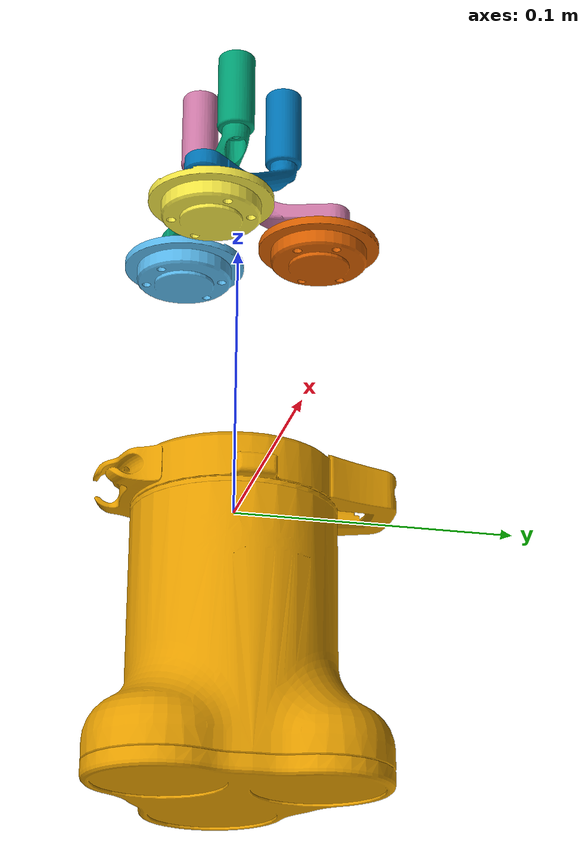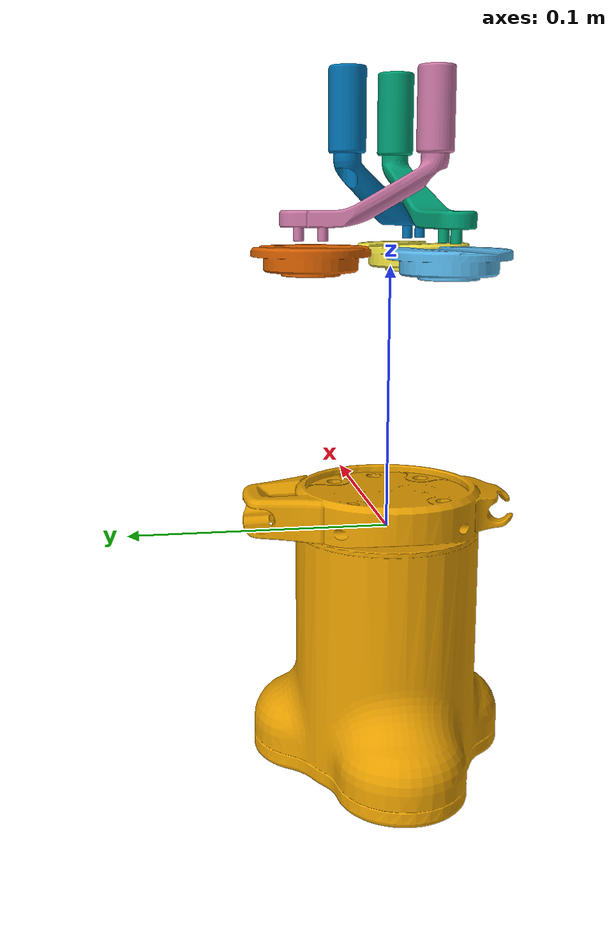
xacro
<?xml version="1.0" encoding="utf-8"?>

<robot name="onrobot_3fg15" xmlns:xacro="http://www.ros.org/wiki/xacro">

  <!-- ================= Xacro arguments ================= -->

  <xacro:arg name="mesh_path" default="package://onrobot_3fg15/meshes"/>
  <xacro:arg name="host" default="127.0.0.1"/>
  <xacro:arg name="port" default="502"/>

  <!-- silicone, aluminum or knurled -->
  <xacro:arg name="fingertip_material" default="13_silicone"/>

  <!-- 1 = 9 mm backward, 2 = default position, 3 = 9 mm foward -->
  <xacro:arg name="fingertip_position" default="2"/>

  <!-- Joint properties -->
  <xacro:arg name="finger_effort" default="6.23"/>
  <xacro:arg name="finger_velocity" default="1.4"/>

  <!-- ================= Fingertip material and collision properties ================= -->

  <xacro:if value="${'$(arg fingertip_material)' == '13_silicone'}">
    <xacro:property
      name="fingertip_mesh"
      value="Ø13_silicone_fingertip_link"/>
    <xacro:property
      name="fingertip_mu"
      value="0.4"/>
  </xacro:if>

  <xacro:if value="${'$(arg fingertip_material)' == '165_silicone'}">
    <xacro:property
      name="fingertip_mesh"
      value="Ø165_silicone_fingertip_link"/>
    <xacro:property
      name="fingertip_mu"
      value="0.4"/>
  </xacro:if>

  <xacro:if value="${'$(arg fingertip_material)' == '13_steel'}">
    <xacro:property
      name="fingertip_mesh"
      value="Ø13_steel_fingertip_link"/>
    <xacro:property
      name="fingertip_mu"
      value="0.15"/>
  </xacro:if>

  <xacro:if value="${'$(arg fingertip_material)' == '10_steel'}">
    <xacro:property
      name="fingertip_mesh"
      value="Ø10_steel_fingertip_link"/>
    <xacro:property
      name="fingertip_mu"
      value="0.15"/>
  </xacro:if>

  <xacro:if value="${'$(arg fingertip_material)' == 'knurled'}">
    <xacro:property
      name="fingertip_mesh"
      value="Ø13_steel_fingertip_link"/>
    <xacro:property
      name="fingertip_mu"
      value="0.6"/>
  </xacro:if>

  <!-- ================= Fingertip mounting position ================= -->

  <!-- Position 1: 9 mm backwards, joint range -2 degrees to 150 degrees -->
  <xacro:if value="${'$(arg fingertip_position)' == '1'}">
    <xacro:property
      name="fingertip_x_offset"
      value="-0.009"/>
    <xacro:property
      name="finger_lower_limit"
      value="-0.03490658503988659"/>
    <xacro:property
      name="finger_upper_limit"
      value="2.79253"/>
  </xacro:if>

  <!-- Position 2: current position and current joint range -->
  <xacro:if value="${'$(arg fingertip_position)' == '2'}">
    <xacro:property
      name="fingertip_x_offset"
      value="0"/>
    <xacro:property
      name="finger_lower_limit"
      value="0"/>
    <xacro:property
      name="finger_upper_limit"
      value="2.79253"/>
  </xacro:if>

  <!-- Position 3: 9 mm forwards, joint range 2 degrees to 150 degrees -->
  <xacro:if value="${'$(arg fingertip_position)' == '3'}">
    <xacro:property
      name="fingertip_x_offset"
      value="0.009"/>
    <xacro:property
      name="finger_lower_limit"
      value="0.03490658503988659"/>
    <xacro:property
      name="finger_upper_limit"
      value="2.79253"/>
  </xacro:if>

  <!-- ================= Shared finger base macro ================= -->

  <xacro:macro name="finger_base" params="side">

    <link name="${side}_finger_base_link">

      <inertial>
        <origin
          xyz="1.9356E-09 -3.2268E-07 0.0036526"
          rpy="0 0 0"/>
        <mass value="0.073984"/>
        <inertia
          ixx="7.7599E-06"
          ixy="1.0265E-11"
          ixz="1.4086E-14"
          iyy="7.4402E-06"
          iyz="-1.0881E-15"
          izz="1.4085E-05"/>
      </inertial>

      <visual>
        <origin
          xyz="0 0 0.008"
          rpy="0 0 ${pi}"/>
        <geometry>
          <mesh filename="$(arg mesh_path)/finger_base_link.dae"/>
        </geometry>
      </visual>

    <collision>
      <origin
        xyz="0 0 0"
        rpy="0 0 0" />
      <geometry>
        <mesh filename="$(arg mesh_path)/finger_base_link.STL"/>
      </geometry>
    </collision>

    </link>

  </xacro:macro>

  <!-- ================= Shared fingertip macro ================= -->

  <xacro:macro name="fingertip" params="side">

    <link name="${side}_fingertip_link">

      <inertial>
        <origin
        xyz="0.0291 -1.5409E-06 -0.021298"
        rpy="0 0 0" />
      <mass
        value="0.055374" />
      <inertia
        ixx="3.6915E-06"
        ixy="-1.5645E-09"
        ixz="3.409E-06"
        iyy="1.1731E-05"
        iyz="5.0834E-10"
        izz="9.2854E-06" />
      </inertial>

      <visual>
        <origin
          xyz="0 0 0"
          rpy="0 0 0"/>
        <geometry>
          <mesh filename="$(arg mesh_path)/${fingertip_mesh}.dae"/>
        </geometry>
      </visual>

    <collision>
      <origin
        xyz="0 0 0"
        rpy="0 0 0" />
      <geometry>
          <mesh filename="$(arg mesh_path)/${fingertip_mesh}.STL"/>
      </geometry>
    </collision>

    </link>

    <joint name="${side}_finger_tip_joint" type="fixed">
      <origin
        xyz="${fingertip_x_offset} 0 0"
        rpy="0 0 0"/>
      <parent link="${side}_finger_base_link"/>
      <child link="${side}_fingertip_link"/>
    </joint>

    <gazebo reference="${side}_fingertip_link">
      <mu1>${fingertip_mu}</mu1>
      <mu2>${fingertip_mu}</mu2>
    </gazebo>

  </xacro:macro>

  <!-- ================= Base link ================= -->

  <link name="base_link">

    <inertial>
      <origin
        xyz="-0.00035875 -0.0001775 0.07158"
        rpy="0 0 0"/>
      <mass value="0.68599"/>
      <inertia
        ixx="0.00073145"
        ixy="-2.0611E-08"
        ixz="3.58E-07"
        iyy="0.000737"
        iyz="-2.2044E-07"
        izz="0.00076009"/>
    </inertial>

    <visual>
      <origin
        xyz="0 0 0.0138"
        rpy="${pi} 0 -${pi / 2}"/>
      <geometry>
        <mesh filename="$(arg mesh_path)/base_link.dae"/>
      </geometry>
    </visual>

    <collision>
      <origin
        xyz="0 0 0"
        rpy="0 0 0" />
      <geometry>
        <mesh filename="$(arg mesh_path)/base_link.STL"/>
      </geometry>
    </collision>

  </link>

  <!-- ================= Left finger base ================= -->

  <xacro:finger_base side="left"/>

  <joint name="finger_angle" type="revolute">

    <origin
      xyz="-0.025981 -0.015 0.1143"
      rpy="3.1416 0 0.22689"/>
    <parent link="base_link"/>
    <child link="left_finger_base_link"/>
    <axis xyz="0 0 1"/>
    <limit
      lower="${finger_lower_limit}"
      upper="${finger_upper_limit}"
      effort="$(arg finger_effort)"
      velocity="$(arg finger_velocity)"/>

  </joint>

  <!-- ================= Left fingertip ================= -->

  <xacro:fingertip side="left"/>

  <!-- ================= Right finger base ================= -->

  <xacro:finger_base side="right"/>

  <joint name="right_finger_base_joint" type="revolute">

    <origin
      xyz="0.025981 -0.015 0.1143"
      rpy="3.1416 0 2.3213"/>
    <parent link="base_link"/>
    <child link="right_finger_base_link"/>
    <axis xyz="0 0 1"/>
    <limit
      lower="${finger_lower_limit}"
      upper="${finger_upper_limit}"
      effort="$(arg finger_effort)"
      velocity="$(arg finger_velocity)"/>
    <mimic
      joint="finger_angle"
      multiplier="1"
      offset="0"/>

  </joint>

  <!-- ================= Right fingertip ================= -->

  <xacro:fingertip side="right"/>

  <!-- ================= Middle finger base ================= -->

  <xacro:finger_base side="middle"/>

  <joint name="middle_finger_base_joint" type="revolute">
    <origin
      xyz="0 0.03 0.1143"
      rpy="3.1416 0 -1.8675"/>
    <parent link="base_link"/>
    <child link="middle_finger_base_link"/>
    <axis xyz="0 0 1"/>
    <limit
      lower="${finger_lower_limit}"
      upper="${finger_upper_limit}"
      effort="$(arg finger_effort)"
      velocity="$(arg finger_velocity)"/>
    <mimic
      joint="finger_angle"
      multiplier="1"
      offset="0"/>

  </joint>

  <!-- ================= Middle fingertip ================= -->

  <xacro:fingertip side="middle"/>

  <!-- Native external diameter is commanded independently from the measured
       mechanism angle used to animate the three coupled fingers. -->
  <link name="grip_diameter_control_link"/>
  <joint name="grip_diameter" type="prismatic">
    <parent link="base_link"/>
    <child link="grip_diameter_control_link"/>
    <axis xyz="1 0 0"/>
    <limit lower="0" upper="0.180" effort="100" velocity="1"/>
  </joint>

  <ros2_control name="OnRobot3FG15System" type="system">
    <hardware>
      <plugin>onrobot_gripper_hardware/OnRobotThreeFingerSystem</plugin>
      <param name="model">3fg15</param>
      <param name="transport">tcp</param>
      <param name="host">$(arg host)</param>
      <param name="port">$(arg port)</param>
      <param name="slave_id">65</param>
      <param name="default_force_percent">20.0</param>
      <!-- Device mechanism angle increases while this visual joint closes. -->
      <param name="urdf_finger_angle_scale">-1.0</param>
      <param name="urdf_finger_angle_offset">${finger_upper_limit}</param>
      <param name="urdf_finger_angle_minimum">${finger_lower_limit}</param>
      <param name="urdf_finger_angle_maximum">${finger_upper_limit}</param>
      <param name="fingertip_position">$(arg fingertip_position)</param>
      <param name="poll_period_ms">20</param>
    </hardware>
    <joint name="grip_diameter">
      <command_interface name="position"/>
      <command_interface name="effort"/>
      <state_interface name="position"/>
      <state_interface name="velocity"/>
      <state_interface name="minimum_external_diameter"/>
      <state_interface name="maximum_external_diameter"/>
      <state_interface name="task_position_valid"/>
      <state_interface name="force_valid"/>
      <state_interface name="busy"/>
      <state_interface name="grip_detected"/>
      <state_interface name="active_mode"/>
      <state_interface name="connection_state"/>
      <state_interface name="faulted"/>
      <state_interface name="fault_code"/>
      <state_interface name="firmware_qualification"/>
      <state_interface name="sample_sequence"/>
      <state_interface name="sample_age"/>
      <state_interface name="successful_cycles"/>
      <state_interface name="failed_cycles"/>
      <state_interface name="missed_deadlines"/>
      <state_interface name="watchdog_stops"/>
      <state_interface name="reconnects"/>
      <state_interface name="last_cycle_duration"/>
      <state_interface name="diagnostic_status_valid"/>
      <state_interface name="diagnostic_raw_status"/>
      <state_interface name="diagnostic_busy"/>
      <state_interface name="diagnostic_grip_detected"/>
      <state_interface name="diagnostic_sample_sequence"/>
      <state_interface name="diagnostic_age"/>
      <state_interface name="diagnostic_force_percent"/>
      <state_interface name="diagnostic_finger_angle_rad"/>
      <state_interface name="diagnostic_diameter_mm"/>
      <state_interface name="diagnostic_diameter_with_tip_offset_mm"/>
      <state_interface name="diagnostic_voltage_24v_v"/>
      <state_interface name="diagnostic_motor_current"/>
      <state_interface name="diagnostic_temperature"/>
      <state_interface name="diagnostic_minimum_external_aperture_mm"/>
      <state_interface name="diagnostic_maximum_external_aperture_mm"/>
      <state_interface name="diagnostic_minimum_internal_aperture_mm"/>
      <state_interface name="diagnostic_maximum_internal_aperture_mm"/>
      <state_interface name="diagnostic_current_external_aperture_mm"/>
      <state_interface name="diagnostic_current_internal_aperture_mm"/>
      <state_interface name="diagnostic_fingertip_offset_mm"/>
      <state_interface name="diagnostic_boost_power_limit_w"/>
      <state_interface name="diagnostic_three_finger_force_grip_detected"/>
      <state_interface name="diagnostic_three_finger_calibration_valid"/>
      <state_interface name="diagnostic_three_finger_grip_lost"/>
      <state_interface name="diagnostic_three_finger_position"/>
    </joint>
    <joint name="finger_angle">
      <state_interface name="position"/>
      <state_interface name="velocity"/>
      <state_interface name="measured_angular_position"/>
      <state_interface name="measured_angular_velocity"/>
      <state_interface name="position_valid"/>
      <state_interface name="velocity_valid"/>
    </joint>
  </ros2_control>

</robot>
